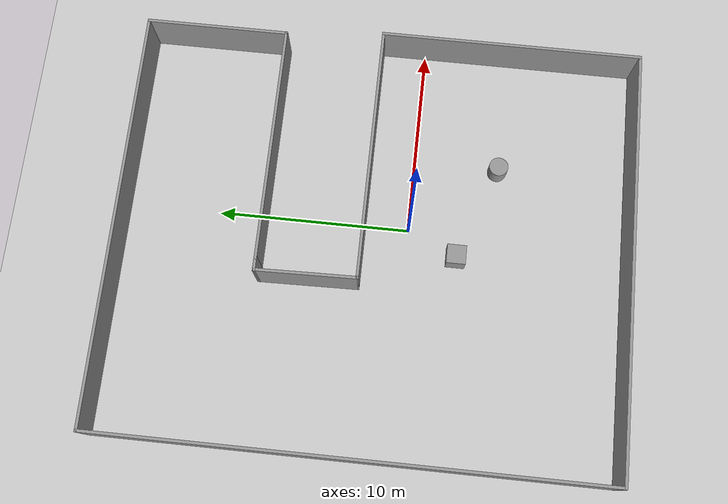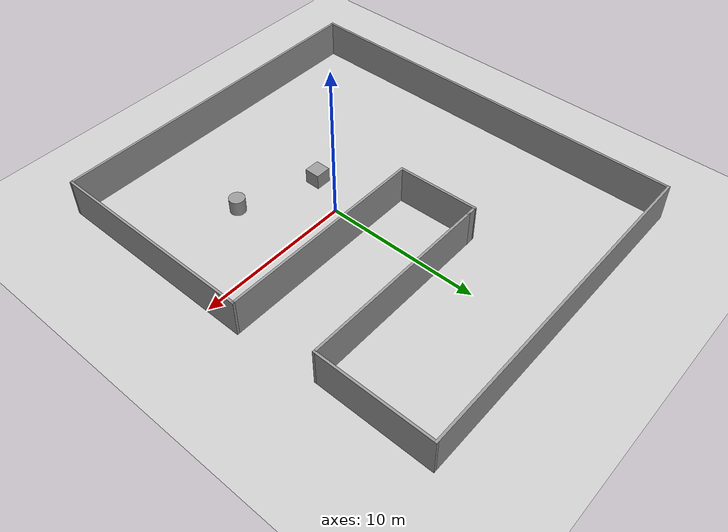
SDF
<sdf version="1.6">
 <world name="default">
  <light name="sun" type="directional">
   <pose>0 0 10 0 -0 0</pose>
   <diffuse>0.8 0.8 0.8 1</diffuse>
   <specular>0.2 0.2 0.2 1</specular>
   <attenuation>
    <range>1000</range>
    <constant>0.9</constant>
    <linear>0.01</linear>
    <quadratic>0.001</quadratic>
   </attenuation>
   <direction>-0.5 0.1 -0.9</direction>
  </light>
  <model name="ground_plane">
   <static>1</static>
   <link name="link">
    <collision name="collision">
     <geometry><plane><normal>0 0 1</normal><size>100 100</size></plane></geometry>
     <surface>
      <contact><collide_bitmask>65535</collide_bitmask></contact>
      <friction><ode><mu>100</mu><mu2>50</mu2></ode></friction>
     </surface>
    </collision>
    <visual name="visual">
     <cast_shadows>0</cast_shadows>
     <geometry><plane><normal>0 0 1</normal><size>100 100</size></plane></geometry>
     <material>
      <script><uri>file://media/materials/scripts/gazebo.material</uri><name>Gazebo/Grey</name></script>
     </material>
    </visual>
   </link>
  </model>
  <gravity>0 0 -9.8</gravity>
  <magnetic_field>6e-06 2.3e-05 -4.2e-05</magnetic_field>
  <atmosphere type="adiabatic"/>
  <physics name="default_physics" default="0" type="ode">
   <max_step_size>0.001</max_step_size>
   <real_time_factor>1</real_time_factor>
   <real_time_update_rate>1000</real_time_update_rate>
  </physics>
  <scene><ambient>0.4 0.4 0.4 1</ambient><background>0.7 0.7 0.7 1</background><shadows>1</shadows></scene>
  <audio><device>default</device></audio>
  <spherical_coordinates>
   <surface_model>EARTH_WGS84</surface_model>
   <latitude_deg>0</latitude_deg>
   <longitude_deg>0</longitude_deg>
   <elevation>0</elevation>
   <heading_deg>0</heading_deg>
  </spherical_coordinates>
  <model name="unit_box">
   <pose>-1.20387 -2.55854 0.499995 -0 -1e-05 -0.000714</pose>
   <link name="link">
    <inertial>
     <mass>1</mass>
     <inertia>
      <ixx>0.166667</ixx>
      <ixy>0</ixy>
      <ixz>0</ixz>
      <iyy>0.166667</iyy>
      <iyz>0</iyz>
      <izz>0.166667</izz>
     </inertia>
    </inertial>
    <collision name="collision"><geometry><box><size>1 1 1</size></box></geometry></collision>
    <visual name="visual">
     <geometry><box><size>1 1 1</size></box></geometry>
     <material>
      <script><name>Gazebo/Grey</name><uri>file://media/materials/scripts/gazebo.material</uri></script>
     </material>
    </visual>
   </link>
  </model>
  <model name="unit_cylinder">
   <pose>3.75015 -4.39783 0.499992 -3e-06 3e-06 0</pose>
   <link name="link">
    <inertial>
     <mass>1</mass>
     <inertia><ixx>0.145833</ixx><ixy>0</ixy><ixz>0</ixz><iyy>0.145833</iyy><iyz>0</iyz><izz>0.125</izz></inertia>
    </inertial>
    <collision name="collision">
     <geometry><cylinder><radius>0.5</radius><length>1</length></cylinder></geometry>
    </collision>
    <visual name="visual">
     <geometry><cylinder><radius>0.5</radius><length>1</length></cylinder></geometry>
     <material>
      <script><name>Gazebo/Grey</name><uri>file://media/materials/scripts/gazebo.material</uri></script>
     </material>
    </visual>
   </link>
  </model>
  <model name="Untitled">
   <pose>-1.00288 1.79006 0 0 -0 0</pose>
   <link name="Wall_11">
    <collision name="Wall_11_Collision">
     <geometry><box><size>0.75 0.15 2.5</size></box></geometry>
     <pose>0 0 1.25 0 -0 0</pose>
    </collision>
    <visual name="Wall_11_Visual">
     <pose>0 0 1.25 0 -0 0</pose>
     <geometry><box><size>0.75 0.15 2.5</size></box></geometry>
     <material>
      <script><uri>file://media/materials/scripts/gazebo.material</uri><name>Gazebo/Grey</name></script>
      <ambient>1 1 1 1</ambient>
     </material>
     <meta><layer>0</layer></meta>
    </visual>
    <pose>-2.1 5.7 0 0 -0 3.14159</pose>
   </link>
   <link name="Wall_12">
    <collision name="Wall_12_Collision">
     <geometry><box><size>5.30097 0.15 2.5</size></box></geometry>
     <pose>0 0 1.25 0 -0 0</pose>
    </collision>
    <visual name="Wall_12_Visual">
     <pose>0 0 1.25 0 -0 0</pose>
     <geometry><box><size>5.30097 0.15 2.5</size></box></geometry>
     <material>
      <script><uri>file://media/materials/scripts/gazebo.material</uri><name>Gazebo/Grey</name></script>
      <ambient>1 1 1 1</ambient>
     </material>
     <meta><layer>0</layer></meta>
    </visual>
    <pose>-2.35 3.125 0 0 -0 -1.55138</pose>
   </link>
   <link name="Wall_2">
    <collision name="Wall_2_Collision">
     <geometry><box><size>13.5 0.15 2.5</size></box></geometry>
     <pose>0 0 1.25 0 -0 0</pose>
    </collision>
    <visual name="Wall_2_Visual">
     <pose>0 0 1.25 0 -0 0</pose>
     <geometry><box><size>13.5 0.15 2.5</size></box></geometry>
     <material>
      <script><uri>file://media/materials/scripts/gazebo.material</uri><name>Gazebo/Grey</name></script>
      <ambient>1 1 1 1</ambient>
     </material>
     <meta><layer>0</layer></meta>
    </visual>
    <pose>4.375 0.549999 0 0 -0 0</pose>
   </link>
   <link name="Wall_3">
    <collision name="Wall_3_Collision">
     <geometry><box><size>13.75 0.15 2.5</size></box></geometry>
     <pose>0 0 1.25 0 -0 0</pose>
    </collision>
    <visual name="Wall_3_Visual">
     <pose>0 0 1.25 0 -0 0</pose>
     <geometry><box><size>13.75 0.15 2.5</size></box></geometry>
     <material>
      <script><uri>file://media/materials/scripts/gazebo.material</uri><name>Gazebo/Grey</name></script>
      <ambient>1 1 1 1</ambient>
     </material>
     <meta><layer>0</layer></meta>
    </visual>
    <pose>11.05 -6.25 0 0 -0 -1.5708</pose>
   </link>
   <link name="Wall_4">
    <collision name="Wall_4_Collision">
     <geometry><box><size>22.25 0.15 2.5</size></box></geometry>
     <pose>0 0 1.25 0 -0 0</pose>
    </collision>
    <visual name="Wall_4_Visual">
     <pose>0 0 1.25 0 -0 0</pose>
     <geometry><box><size>22.25 0.15 2.5</size></box></geometry>
     <material>
      <script><uri>file://media/materials/scripts/gazebo.material</uri><name>Gazebo/Grey</name></script>
      <ambient>1 1 1 1</ambient>
     </material>
     <meta><layer>0</layer></meta>
    </visual>
    <pose>0 -13.05 0 0 -0 3.14159</pose>
   </link>
   <link name="Wall_5">
    <collision name="Wall_5_Collision">
     <geometry><box><size>26.25 0.15 2.5</size></box></geometry>
     <pose>0 0 1.25 0 -0 0</pose>
    </collision>
    <visual name="Wall_5_Visual">
     <pose>0 0 1.25 0 -0 0</pose>
     <geometry><box><size>26.25 0.15 2.5</size></box></geometry>
     <material>
      <script><uri>file://media/materials/scripts/gazebo.material</uri><name>Gazebo/Grey</name></script>
      <ambient>1 1 1 1</ambient>
     </material>
     <meta><layer>0</layer></meta>
    </visual>
    <pose>-11.05 -0 0 0 -0 1.5708</pose>
   </link>
   <link name="Wall_6">
    <collision name="Wall_6_Collision">
     <geometry><box><size>21.75 0.15 2.5</size></box></geometry>
     <pose>0 0 1.25 0 -0 0</pose>
    </collision>
    <visual name="Wall_6_Visual">
     <pose>0 0 1.25 0 -0 0</pose>
     <geometry><box><size>21.75 0.15 2.5</size></box></geometry>
     <material>
      <script><uri>file://media/materials/scripts/gazebo.material</uri><name>Gazebo/Grey</name></script>
      <ambient>1 1 1 1</ambient>
     </material>
     <meta><layer>0</layer></meta>
    </visual>
    <pose>-0.25 13.05 0 0 -0 0</pose>
   </link>
   <link name="Wall_7">
    <collision name="Wall_7_Collision">
     <geometry><box><size>7.5 0.15 2.5</size></box></geometry>
     <pose>0 0 1.25 0 -0 0</pose>
    </collision>
    <visual name="Wall_7_Visual">
     <pose>0 0 1.25 0 -0 0</pose>
     <geometry><box><size>7.5 0.15 2.5</size></box></geometry>
     <material>
      <script><uri>file://media/materials/scripts/gazebo.material</uri><name>Gazebo/Grey</name></script>
      <ambient>1 1 1 1</ambient>
     </material>
     <meta><layer>0</layer></meta>
    </visual>
    <pose>10.55 9.375 0 0 -0 -1.5708</pose>
   </link>
   <link name="Wall_8">
    <collision name="Wall_8_Collision">
     <geometry><box><size>12.5 0.15 2.5</size></box></geometry>
     <pose>0 0 1.25 0 -0 0</pose>
    </collision>
    <visual name="Wall_8_Visual">
     <pose>0 0 1.25 0 -0 0</pose>
     <geometry><box><size>12.5 0.15 2.5</size></box></geometry>
     <material>
      <script><uri>file://media/materials/scripts/gazebo.material</uri><name>Gazebo/Grey</name></script>
      <ambient>1 1 1 1</ambient>
     </material>
     <meta><layer>0</layer></meta>
    </visual>
    <pose>4.375 5.7 0 0 -0 3.14159</pose>
   </link>
   <static>1</static>
  </model>
 </world>
</sdf>
